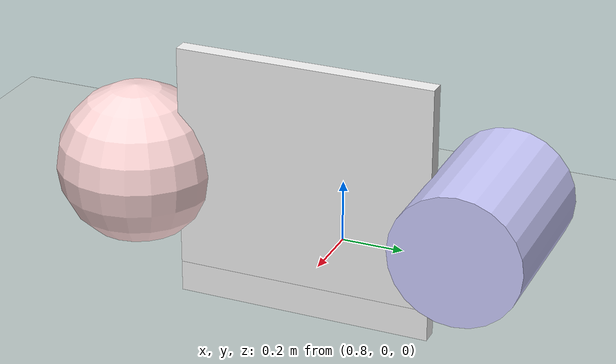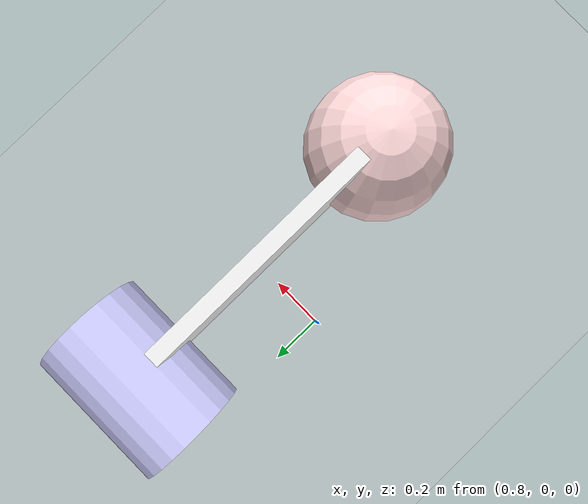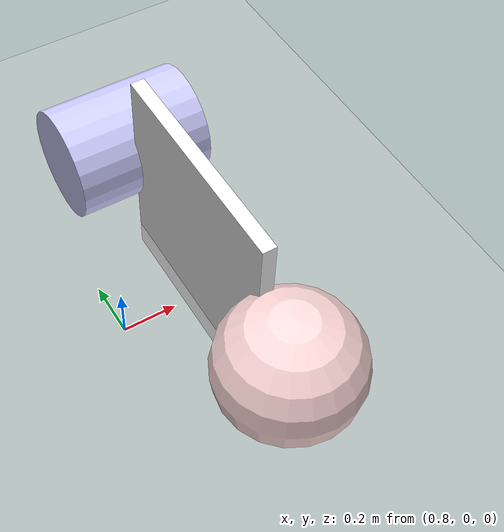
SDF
<?xml version="1.0" ?>
<sdf version="1.9">
  <world name="test_all_geometry">

    <plugin filename="gz-sim-physics-system"   name="gz::sim::systems::Physics"/>
    <plugin filename="gz-sim-user-commands-system" name="gz::sim::systems::UserCommands"/>
    <plugin filename="gz-sim-scene-broadcaster-system" name="gz::sim::systems::SceneBroadcaster"/>
    <plugin filename="gz-sim-sensors-system"   name="gz::sim::systems::Sensors">
      <render_engine>ogre2</render_engine>
    </plugin>
    <plugin filename="gz-sim-particle-emitter-system" name="gz::sim::systems::ParticleEmitter"/>

    <physics name="1ms" type="dart">
      <max_step_size>0.001</max_step_size>
      <real_time_factor>1.0</real_time_factor>
      <dart><collision_detector>bullet</collision_detector></dart>
    </physics>

    <scene>
      <ambient>0.4 0.4 0.4 1</ambient>
      <background>0.7 0.7 0.8 1</background>
      <shadows>true</shadows>
    </scene>

    <light type="directional" name="sun">
      <cast_shadows>true</cast_shadows>
      <pose>0 0 10 0 0 0</pose>
      <diffuse>0.8 0.8 0.8 1</diffuse>
      <specular>0.2 0.2 0.2 1</specular>
      <direction>-0.5 0.1 -0.9</direction>
    </light>

    <!-- Ground plane -->
    <model name="ground_plane">
      <static>true</static>
      <link name="link">
        <collision name="collision">
          <geometry><plane><normal>0 0 1</normal><size>20 20</size></plane></geometry>
        </collision>
        <visual name="visual">
          <geometry><plane><normal>0 0 1</normal><size>20 20</size></plane></geometry>
          <material><ambient>0.8 0.8 0.8 1</ambient><diffuse>0.8 0.8 0.8 1</diffuse></material>
        </visual>
      </link>
    </model>

    <!-- BOX target — flat white panel facing the nozzle (+X face toward x=0) -->
    <model name="box_target">
      <static>true</static>
      <pose>1.1 0 0.3 0 0 0</pose>
      <link name="link">
        <collision name="collision">
          <geometry><box><size>0.05 0.8 0.8</size></box></geometry>
        </collision>
        <visual name="visual">
          <geometry><box><size>0.05 0.8 0.8</size></box></geometry>
          <material>
            <ambient>0.95 0.95 0.95 1</ambient>
            <diffuse>0.95 0.95 0.95 1</diffuse>
          </material>
        </visual>
      </link>
    </model>

    <!-- CYLINDER target — vertical cylinder beside the box (+Y offset).
         Rotated 90° around Y so the curved barrel faces the nozzle. -->
    <model name="cylinder_target">
      <static>true</static>
      <pose>1.1 0.55 0.3 0 1.5708 0</pose>
      <link name="link">
        <collision name="collision">
          <geometry><cylinder><radius>0.2</radius><length>0.5</length></cylinder></geometry>
        </collision>
        <visual name="visual">
          <geometry><cylinder><radius>0.2</radius><length>0.5</length></cylinder></geometry>
          <material>
            <ambient>0.8 0.8 1.0 1</ambient>
            <diffuse>0.8 0.8 1.0 1</diffuse>
          </material>
        </visual>
      </link>
    </model>

    <!-- SPHERE target — on the -Y side of the box -->
    <model name="sphere_target">
      <static>true</static>
      <pose>1.1 -0.55 0.3 0 0 0</pose>
      <link name="link">
        <collision name="collision">
          <geometry><sphere><radius>0.25</radius></sphere></geometry>
        </collision>
        <visual name="visual">
          <geometry><sphere><radius>0.25</radius></sphere></geometry>
          <material>
            <ambient>1.0 0.85 0.85 1</ambient>
            <diffuse>1.0 0.85 0.85 1</diffuse>
          </material>
        </visual>
      </link>
    </model>

  </world>
</sdf>
